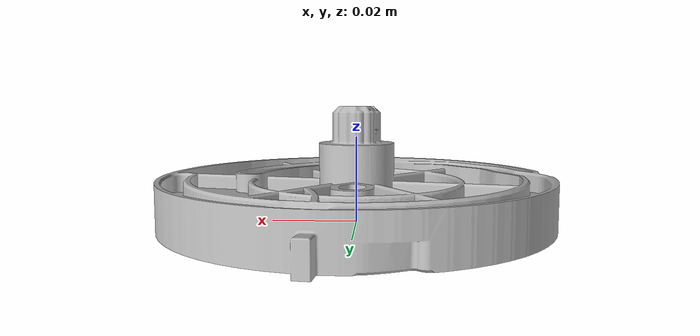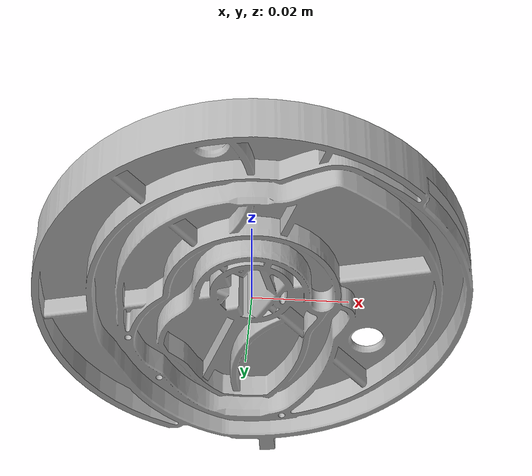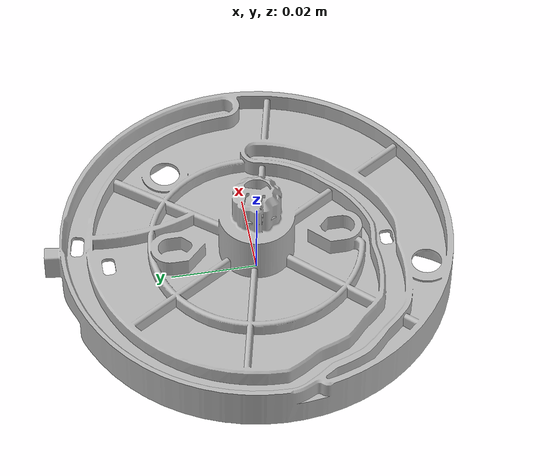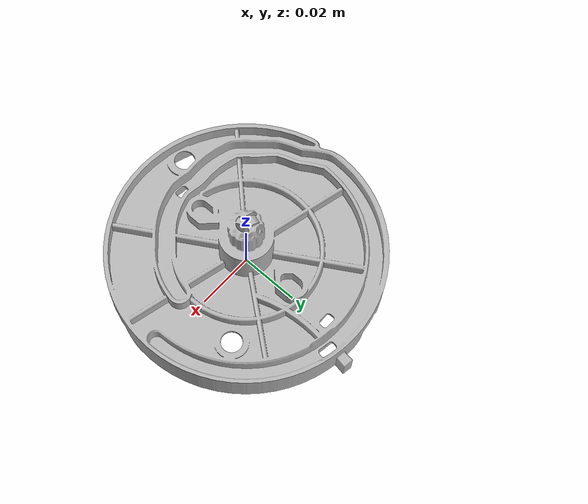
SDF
<?xml version="1.0"?>
<sdf version="1.6">
    <model name="HV8">
        <pose>0 0 0 0 0 0</pose>
        <static>true</static>
        <link name="HV8">
            <inertial>
                <mass>0.2</mass>
                <inertia>
                    <ixx>0.0005</ixx>
                    <ixy>0.0</ixy>
                    <ixz>0.0</ixz>
                    <iyy>0.0005</iyy>
                    <iyz>0.0</iyz>
                    <izz>0.0005</izz>
                </inertia>
            </inertial>
            <collision name="collishin">
                <geometry>
                    <mesh>
                        <uri>model://HV8/meshes/HV8_1.stl</uri>
                    </mesh>
                </geometry>
            </collision>
            <visual name="visual">
                <geometry>
                    <mesh>
                        <uri>model://HV8/meshes/HV8_1.stl</uri>
                    </mesh>
                </geometry>
            </visual>
        </link>
    </model>
</sdf>
